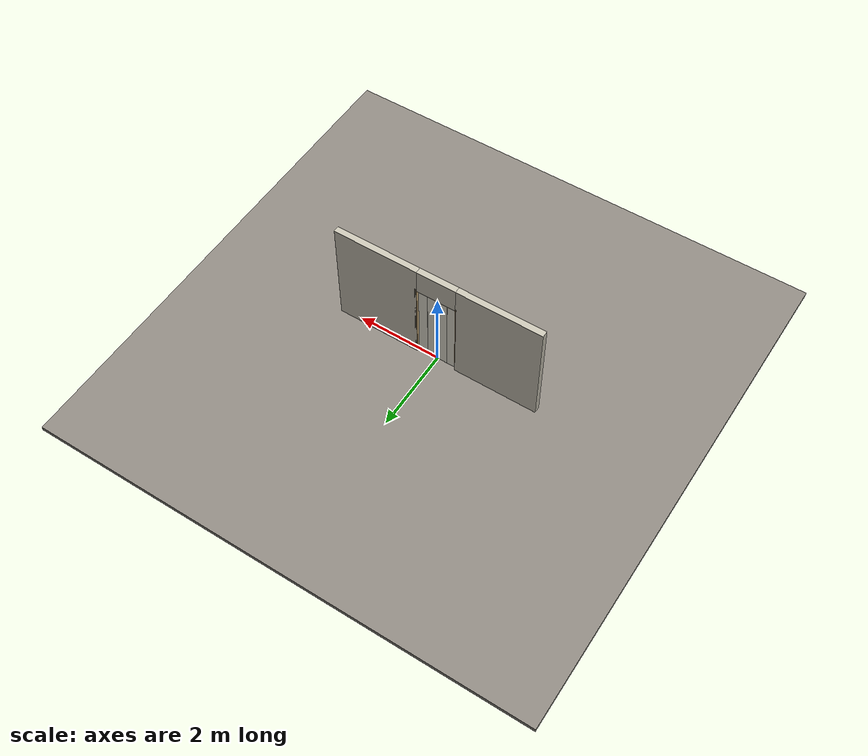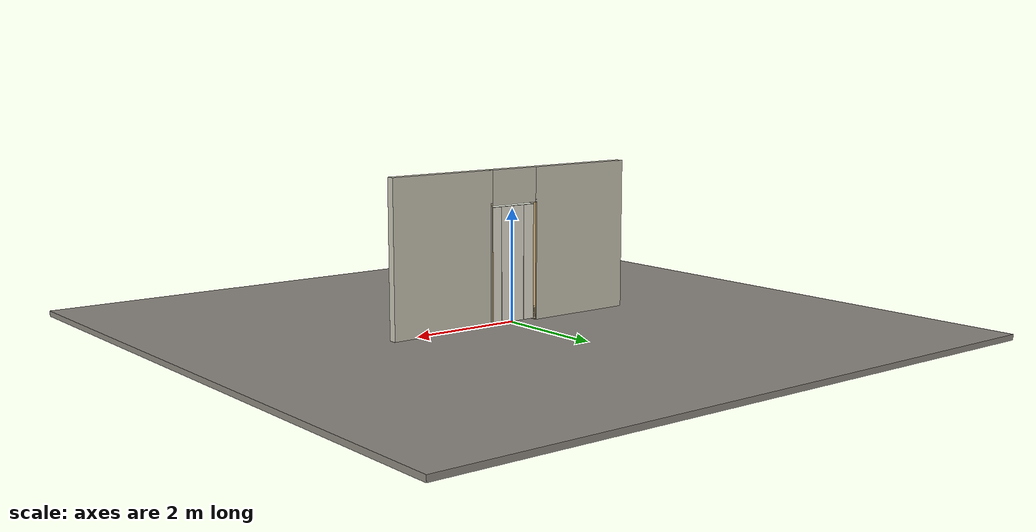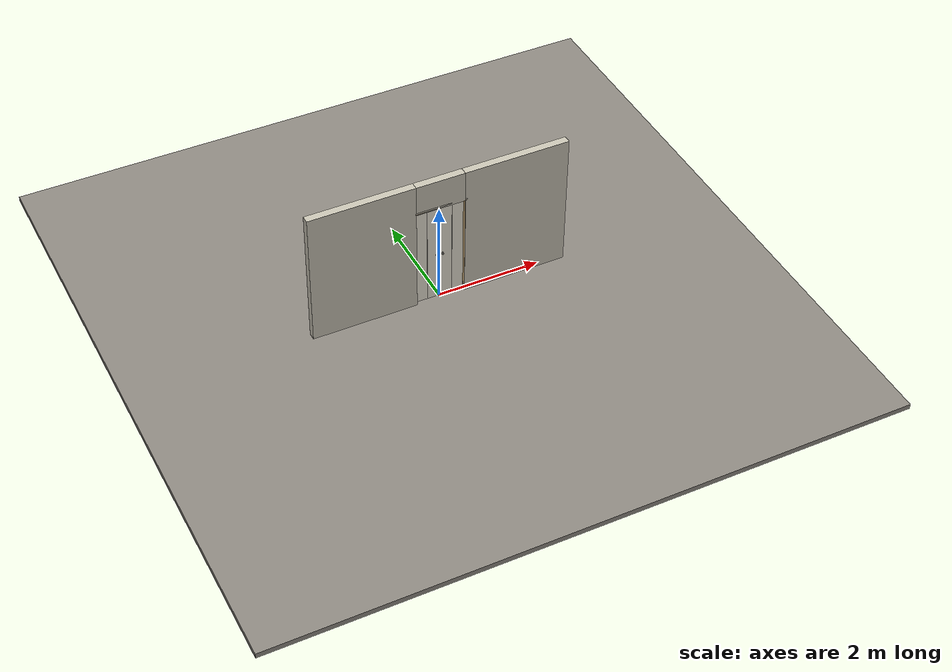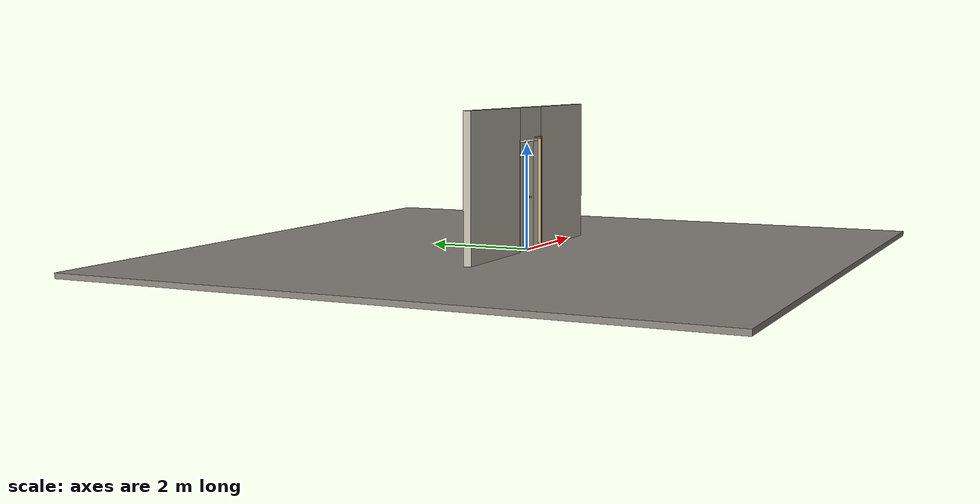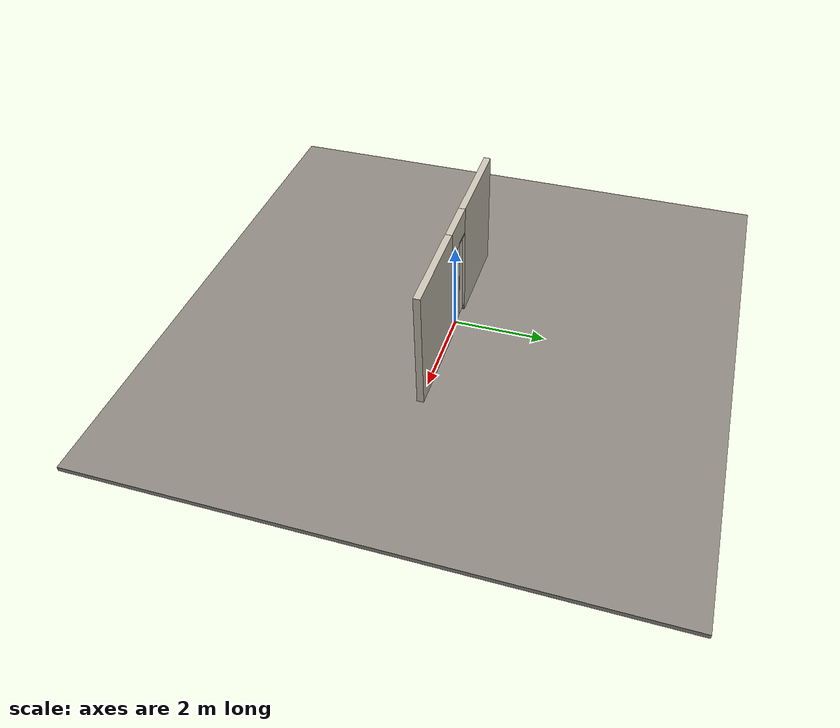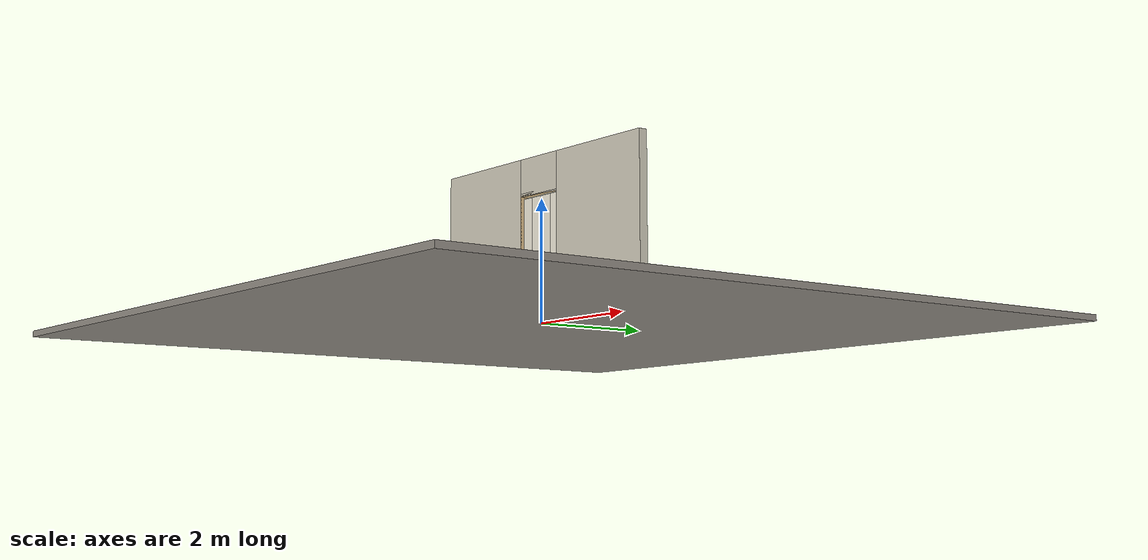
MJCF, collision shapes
<?xml version="1.0" ?>
<mujoco model="db0750_bifold_minimal">
  <compiler angle="radian" meshdir="../../hardware" texturedir="../../textures" autolimits="true" inertiafromgeom="false"/>
  <option timestep="0.002" integrator="implicitfast" cone="elliptic" impratio="10" noslip_iterations="3">
    <flag multiccd="enable"/>
  </option>
  <size memory="16M"/>
  <default>
    <geom condim="4" solref="0.005 1" solimp="0.95 0.99 0.001"/>
    <joint solreflimit="0.005 1" solimplimit="0.95 0.99 0.001"/>
    <tendon solreflimit="0.005 1"/>
    <equality solref="0.002 1"/>
  </default>
  <visual>
    <headlight ambient="0.4 0.4 0.4" diffuse="0.7 0.7 0.7" specular="0.2 0.2 0.2"/>
    <quality shadowsize="4096"/>
    <map znear="0.01" zfar="60"/>
  </visual>
  <asset>
    <mesh name="knob_13f7a2a65f" file="knob_13f7a2a65f.obj"/>
    <material name="mat_floor" rgba="0.55 0.53 0.5 1" specular="0.2" shininess="0.15" reflectance="0"/>
    <material name="mat_wall" rgba="0.78 0.76 0.7 1" specular="0.2" shininess="0.1" reflectance="0"/>
    <material name="mat_frame" rgba="0.82 0.7 0.5 1" specular="0.2" shininess="0.45" reflectance="0"/>
    <material name="mat_track" rgba="0.8 0.81 0.83 1" specular="0.8" shininess="0.6" reflectance="0.4"/>
    <material name="mat_hinge" rgba="0.65 0.66 0.68 1" specular="0.74" shininess="0.5" reflectance="0.36"/>
    <material name="mat_panel_0_0" rgba="0.9 0.88 0.82 1" specular="0.2" shininess="0.36" reflectance="0"/>
    <material name="mat_panel_0_0_louver" rgba="0.765 0.748 0.697 1" specular="0.2" shininess="0.4" reflectance="0"/>
    <material name="mat_panel_0_1" rgba="0.9 0.88 0.82 1" specular="0.2" shininess="0.36" reflectance="0"/>
    <material name="mat_panel_0_1_louver" rgba="0.765 0.748 0.697 1" specular="0.2" shininess="0.4" reflectance="0"/>
    <material name="mat_op_nickel_satin" rgba="0.72 0.7 0.66 1" specular="0.8" shininess="0.65" reflectance="0.4"/>
    <material name="mat_panel_1_0" rgba="0.9 0.88 0.82 1" specular="0.2" shininess="0.36" reflectance="0"/>
    <material name="mat_panel_1_0_louver" rgba="0.765 0.748 0.697 1" specular="0.2" shininess="0.4" reflectance="0"/>
    <material name="mat_panel_1_1" rgba="0.9 0.88 0.82 1" specular="0.2" shininess="0.36" reflectance="0"/>
    <material name="mat_panel_1_1_louver" rgba="0.765 0.748 0.697 1" specular="0.2" shininess="0.4" reflectance="0"/>
    <texture name="skybox" type="skybox" builtin="gradient" rgb1="0.6 0.7 0.85" rgb2="0.9 0.92 0.95" width="256" height="256"/>
  </asset>
  <worldbody>
    <light name="sun" pos="1.5 -2.5 4" dir="-0.3 0.5 -0.8" directional="true" diffuse="0.8 0.8 0.8" specular="0.3 0.3 0.3" castshadow="true"/>
    <light name="fill" pos="-1.5 2.5 3" dir="0.3 -0.5 -0.7" directional="true" diffuse="0.35 0.35 0.4" castshadow="false"/>
    <camera name="robot_view" pos="0 -2.581563 1.766338" xyaxes="1 0 0 0 0.26963 0.962964" fovy="52"/>
    <camera name="far_view" pos="0 2.581563 1.766338" xyaxes="-1 0 0 0 -0.26963 0.962964" fovy="52"/>
    <camera name="iso" pos="1.961988 -2.168513 2.179388" xyaxes="0.741536 0.670913 0 -0.242917 0.268487 0.932151" fovy="46"/>
    <camera name="detail_handle" pos="0.124739 -0.8475 1.28" xyaxes="0.97561 0.219512 0 -0.070934 0.315262 0.94635" fovy="38"/>
    <geom name="floor" type="box" size="6 6 0.05" pos="0 0 -0.05" material="mat_floor" group="0" contype="1" conaffinity="1" friction="0.8 0.005 0.0001" density="2400"/>
    <geom name="wall_left" type="box" size="1.015 0.0725 1.35" pos="-1.485 0 1.35" material="mat_wall" group="0" contype="1" conaffinity="1" friction="0.6 0.005 0.0001" density="800"/>
    <geom name="wall_right" type="box" size="1.015 0.0725 1.35" pos="1.485 0 1.35" material="mat_wall" group="0" contype="1" conaffinity="1" friction="0.6 0.005 0.0001" density="800"/>
    <geom name="wall_header" type="box" size="0.47 0.0725 0.3065" pos="0 0 2.3935" material="mat_wall" group="0" contype="1" conaffinity="1" friction="0.6 0.005 0.0001" density="800"/>
    <geom name="jamb_hinge" type="box" size="0.0095 0.0725 1.0435" pos="-0.4795 0 1.0435" material="mat_frame" group="0" contype="1" conaffinity="1" friction="0.6 0.005 0.0001" density="400"/>
    <geom name="jamb_strike" type="box" size="0.0095 0.0725 1.0435" pos="0.4795 0 1.0435" material="mat_frame" group="0" contype="1" conaffinity="1" friction="0.6 0.005 0.0001" density="400"/>
    <geom name="stud_strike" type="box" size="0.015 0.0725 1.0435" pos="0.504 0 1.0435" material="mat_wall" group="0" contype="1" conaffinity="1" friction="0.6 0.005 0.0001" density="500"/>
    <geom name="jamb_head" type="box" size="0.504 0.0725 0.0095" pos="0.015 0 2.0965" material="mat_frame" group="0" contype="1" conaffinity="1" friction="0.6 0.005 0.0001" density="400"/>
    <geom name="head_stud" type="box" size="0.504 0.0725 0.015" pos="0.015 0 2.121" material="mat_wall" group="0" contype="1" conaffinity="1" friction="0.6 0.005 0.0001" density="500"/>
    <site name="approach_point" pos="0 -1.5 0" quat="1 0 0 0" size="0.05" rgba="0.2 0.9 0.2 0.5" group="4"/>
    <site name="goal_point" pos="0 1.5 0" quat="1 0 0 0" size="0.05" rgba="0.2 0.9 0.2 0.5" group="4"/>
    <site name="door_plane_center" pos="0 0 1.0435" quat="1 0 0 0" size="0.02" rgba="0.2 0.9 0.2 0.5" group="4"/>
    <body name="panel_0_0" pos="-0.47 0 0">
      <inertial pos="0.117355 0 1.036" mass="3.46715" quat="-0.5 0.5 0.5 0.5" diaginertia="0.013995822 1.193349562 1.206637507"/>
      <joint name="panel_0_0_hinge" type="hinge" axis="0 0 -1" pos="0.035 0 0" limited="true" range="0 1.48353" damping="0.673648" frictionloss="1.400025" armature="0.02"/>
      <geom name="panel_0_0_slab" type="box" size="0.108645 0.0175 1.016" pos="0.117355 0 1.036" material="mat_panel_0_0" group="0" contype="1" conaffinity="1" friction="0.35 0.005 0.0001" density="1"/>
      <body name="panel_0_1" pos="0.228 0 0">
        <inertial pos="0.179876 -0.032263 1.003667" mass="3.782608" quat="0.566988 -0.426346 0.564766 0.421655" diaginertia="0.004536952 0.134007295 0.137103606"/>
        <joint name="panel_0_1_hinge" type="hinge" axis="0 0 -1" pos="0 0.0175 0" limited="true" range="-3.141593 0" damping="0.2" frictionloss="0.1" armature="0.005"/>
        <geom name="panel_0_1_slab" type="box" size="0.11737 0.0175 1.016" pos="0.11937 0 1.036" material="mat_panel_0_1" group="0" contype="1" conaffinity="1" friction="0.35 0.005 0.0001" density="1"/>
        <geom name="panel_0_1_knob" type="mesh" mesh="knob_13f7a2a65f" pos="0.186739 -0.0175 1" quat="0.707107 0.707107 0 0" material="mat_op_nickel_satin" group="1" contype="0" conaffinity="0" density="3000"/>
        <geom name="panel_0_1_knob_col" type="sphere" size="0.016" pos="0.186739 -0.0475 1" material="mat_op_nickel_satin" group="0" contype="1" conaffinity="1" friction="0.6 0.005 0.0001" density="3000"/>
        <geom name="panel_0_1_knob_rose" type="cylinder" size="0.022 0.005" pos="0.186739 -0.0225 1" quat="0.707107 -0.707107 0 0" material="mat_op_nickel_satin" group="1" contype="0" conaffinity="0" density="3000"/>
        <site name="panel_0_1_grip" pos="0.186739 -0.0475 1" quat="1 0 0 0" size="0.012" rgba="0.2 0.9 0.2 0.5" group="4"/>
      </body>
    </body>
    <body name="panel_1_0" pos="0.47 0 0">
      <inertial pos="-0.117355 0 1.036" mass="3.46715" quat="-0.5 0.5 0.5 0.5" diaginertia="0.013995822 1.193349562 1.206637507"/>
      <joint name="panel_1_0_hinge" type="hinge" axis="0 0 1" pos="-0.035 0 0" limited="true" range="0 1.48353" damping="0.673648" frictionloss="1.400025" armature="0.02"/>
      <geom name="panel_1_0_slab" type="box" size="0.108645 0.0175 1.016" pos="-0.117355 0 1.036" material="mat_panel_1_0" group="0" contype="1" conaffinity="1" friction="0.35 0.005 0.0001" density="1"/>
      <body name="panel_1_1" pos="-0.228 0 0">
        <inertial pos="-0.179876 -0.032263 1.003667" mass="3.782608" quat="0.426346 0.566988 -0.421655 0.564766" diaginertia="0.004536952 0.134007295 0.137103606"/>
        <joint name="panel_1_1_hinge" type="hinge" axis="0 0 1" pos="0 0.0175 0" limited="true" range="-3.141593 0" damping="0.2" frictionloss="0.1" armature="0.005"/>
        <geom name="panel_1_1_slab" type="box" size="0.11737 0.0175 1.016" pos="-0.11937 0 1.036" material="mat_panel_1_1" group="0" contype="1" conaffinity="1" friction="0.35 0.005 0.0001" density="1"/>
        <geom name="panel_1_1_knob" type="mesh" mesh="knob_13f7a2a65f" pos="-0.186739 -0.0175 1" quat="0 0 -0.707107 0.707107" material="mat_op_nickel_satin" group="1" contype="0" conaffinity="0" density="3000"/>
        <geom name="panel_1_1_knob_col" type="sphere" size="0.016" pos="-0.186739 -0.0475 1" material="mat_op_nickel_satin" group="0" contype="1" conaffinity="1" friction="0.6 0.005 0.0001" density="3000"/>
        <geom name="panel_1_1_knob_rose" type="cylinder" size="0.022 0.005" pos="-0.186739 -0.0225 1" quat="0.707107 -0.707107 0 0" material="mat_op_nickel_satin" group="1" contype="0" conaffinity="0" density="3000"/>
        <site name="panel_1_1_grip" pos="-0.186739 -0.0475 1" quat="1 0 0 0" size="0.012" rgba="0.2 0.9 0.2 0.5" group="4"/>
      </body>
    </body>
  </worldbody>
  <equality>
    <joint name="panel_0_1_couple" joint1="panel_0_1_hinge" joint2="panel_0_0_hinge" polycoef="0 -2 0 0 0" active="true"/>
    <joint name="panel_1_1_couple" joint1="panel_1_1_hinge" joint2="panel_1_0_hinge" polycoef="0 -2 0 0 0" active="true"/>
  </equality>
  <sensor>
    <jointpos name="panel_0_0_hinge_pos" joint="panel_0_0_hinge"/>
    <jointvel name="panel_0_0_hinge_vel" joint="panel_0_0_hinge"/>
    <jointpos name="panel_0_1_hinge_pos" joint="panel_0_1_hinge"/>
    <jointvel name="panel_0_1_hinge_vel" joint="panel_0_1_hinge"/>
    <jointpos name="panel_1_0_hinge_pos" joint="panel_1_0_hinge"/>
    <jointvel name="panel_1_0_hinge_vel" joint="panel_1_0_hinge"/>
    <jointpos name="panel_1_1_hinge_pos" joint="panel_1_1_hinge"/>
    <jointvel name="panel_1_1_hinge_vel" joint="panel_1_1_hinge"/>
  </sensor>
</mujoco>
